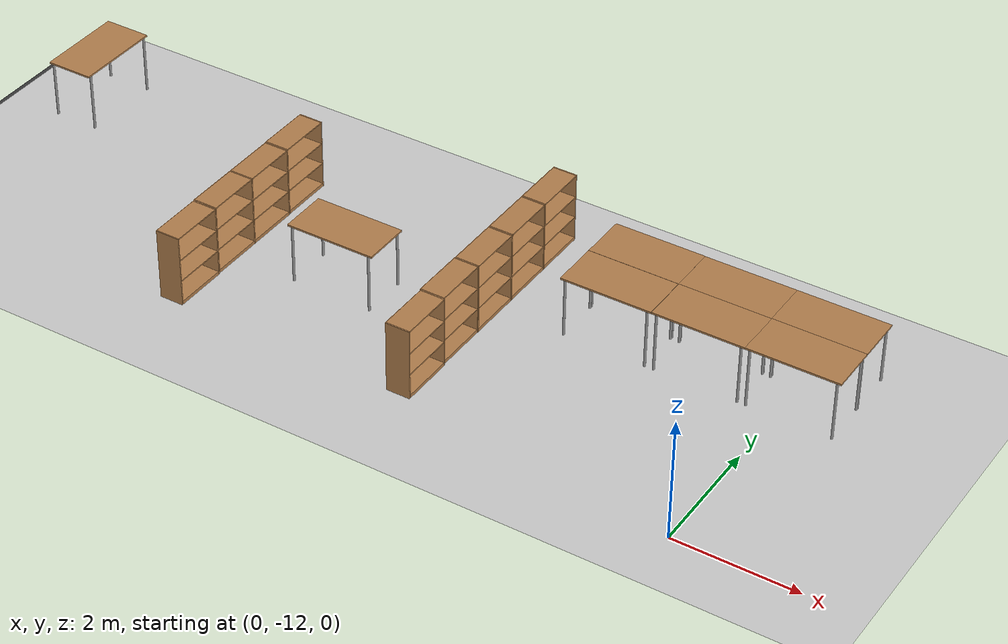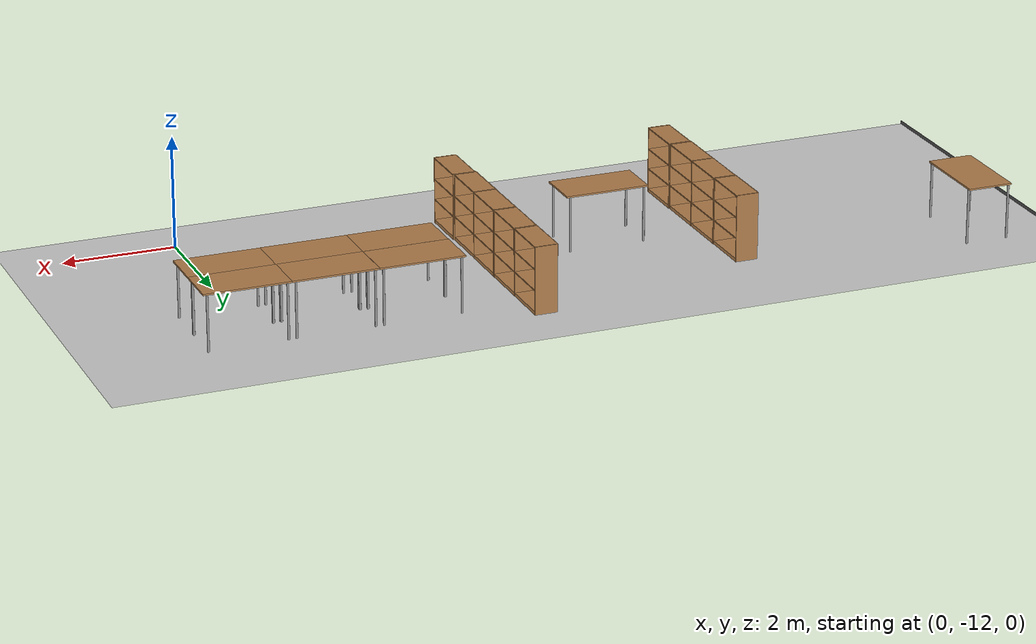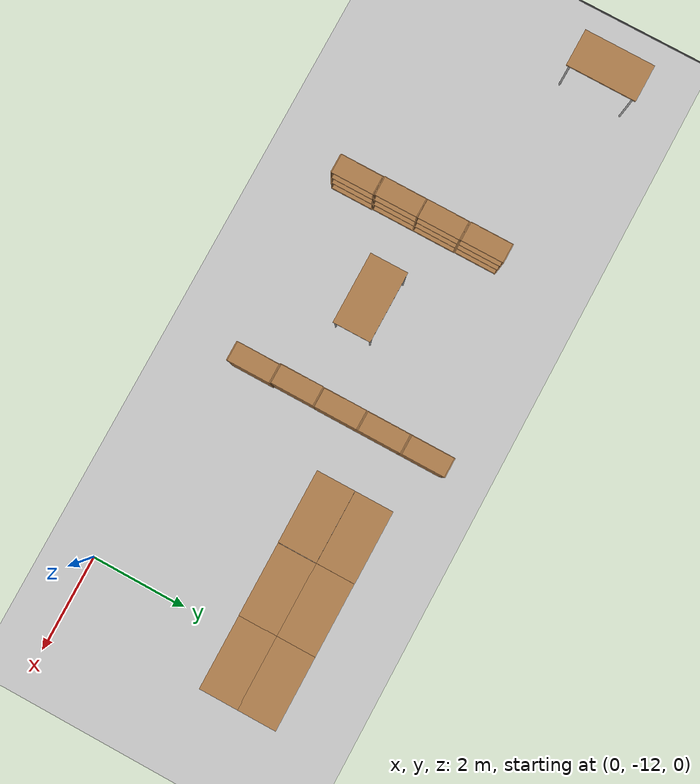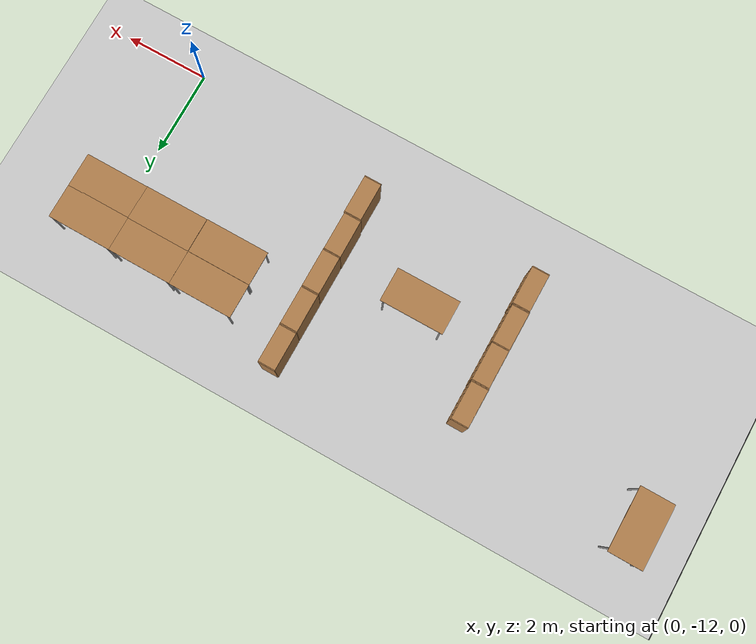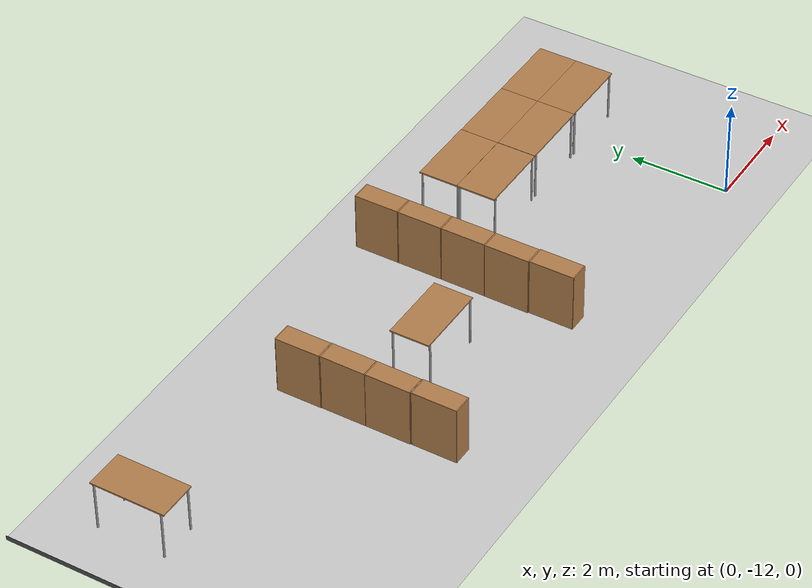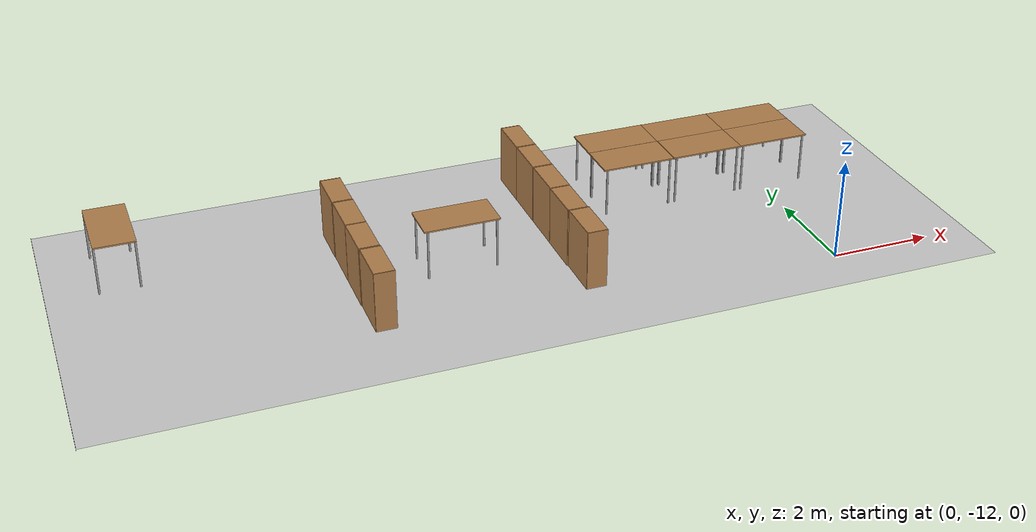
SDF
<sdf version="1.7">
 <world name="default">
  <model name="ground_plane">
   <static>1</static>
   <link name="link">
    <collision name="collision">
     <geometry><plane><normal>0 0 1</normal><size>100 100</size></plane></geometry>
     <surface>
      <contact><collide_bitmask>65535</collide_bitmask></contact>
      <friction><ode><mu>100</mu><mu2>50</mu2></ode></friction>
     </surface>
    </collision>
    <visual name="visual">
     <cast_shadows>0</cast_shadows>
     <geometry><plane><normal>0 0 1</normal><size>100 100</size></plane></geometry>
     <material>
      <script><uri>file://media/materials/scripts/gazebo.material</uri><name>Gazebo/Grey</name></script>
     </material>
    </visual>
   </link>
  </model>
  <model name="asphalt_plane">
   <static>1</static>
   <link name="link">
    <collision name="collision"><geometry><box><size>16.2909 36.5058 0.1</size></box></geometry></collision>
    <visual name="visual">
     <cast_shadows>0</cast_shadows>
     <geometry><box><size>16.2909 36.5058 0.1</size></box></geometry>
     <material>
      <script>
       <uri>model://asphalt_plane/materials/scripts</uri>
       <uri>model://asphalt_plane/materials/textures</uri>
       <name>vrc/asphalt</name>
      </script>
     </material>
    </visual>
   </link>
   <pose>-24.6928 -1.37234 0 0 -0 0</pose>
  </model>
  <model name="bookshelf_clone_9">
   <static>1</static>
   <link name="link">
    <inertial><mass>1</mass></inertial>
    <collision name="back">
     <pose>0 0.005 0.6 0 -0 0</pose>
     <geometry><box><size>0.9 0.01 1.2</size></box></geometry>
    </collision>
    <visual name="visual1">
     <pose>0 0.005 0.6 0 -0 0</pose>
     <geometry><box><size>0.9 0.01 1.2</size></box></geometry>
     <material>
      <script><uri>file://media/materials/scripts/gazebo.material</uri><name>Gazebo/Wood</name></script>
     </material>
    </visual>
    <collision name="left_side">
     <pose>0.45 -0.195 0.6 0 -0 0</pose>
     <geometry><box><size>0.02 0.4 1.2</size></box></geometry>
    </collision>
    <visual name="visual2">
     <pose>0.45 -0.195 0.6 0 -0 0</pose>
     <geometry><box><size>0.02 0.4 1.2</size></box></geometry>
     <material>
      <script><uri>file://media/materials/scripts/gazebo.material</uri><name>Gazebo/Wood</name></script>
     </material>
    </visual>
    <collision name="right_side">
     <pose>-0.45 -0.195 0.6 0 -0 0</pose>
     <geometry><box><size>0.02 0.4 1.2</size></box></geometry>
    </collision>
    <visual name="visual3">
     <pose>-0.45 -0.195 0.6 0 -0 0</pose>
     <geometry><box><size>0.02 0.4 1.2</size></box></geometry>
     <material>
      <script><uri>file://media/materials/scripts/gazebo.material</uri><name>Gazebo/Wood</name></script>
     </material>
    </visual>
    <collision name="bottom">
     <pose>0 -0.195 0.03 0 -0 0</pose>
     <geometry><box><size>0.88 0.4 0.06</size></box></geometry>
    </collision>
    <visual name="visual4">
     <pose>0 -0.195 0.03 0 -0 0</pose>
     <geometry><box><size>0.88 0.4 0.06</size></box></geometry>
     <material>
      <script><uri>file://media/materials/scripts/gazebo.material</uri><name>Gazebo/Wood</name></script>
     </material>
    </visual>
    <collision name="top">
     <pose>0 -0.195 1.19 0 -0 0</pose>
     <geometry><box><size>0.88 0.4 0.02</size></box></geometry>
    </collision>
    <visual name="visual5">
     <pose>0 -0.195 1.19 0 -0 0</pose>
     <geometry><box><size>0.88 0.4 0.02</size></box></geometry>
     <material>
      <script><uri>file://media/materials/scripts/gazebo.material</uri><name>Gazebo/Wood</name></script>
     </material>
    </visual>
    <collision name="low_shelf">
     <pose>0 -0.195 0.43 0 -0 0</pose>
     <geometry><box><size>0.88 0.4 0.02</size></box></geometry>
    </collision>
    <visual name="visual6">
     <pose>0 -0.195 0.43 0 -0 0</pose>
     <geometry><box><size>0.88 0.4 0.02</size></box></geometry>
     <material>
      <script><uri>file://media/materials/scripts/gazebo.material</uri><name>Gazebo/Wood</name></script>
     </material>
    </visual>
    <collision name="high_shelf">
     <pose>0 -0.195 0.8 0 -0 0</pose>
     <geometry><box><size>0.88 0.4 0.02</size></box></geometry>
    </collision>
    <visual name="visual7">
     <pose>0 -0.195 0.8 0 -0 0</pose>
     <geometry><box><size>0.88 0.4 0.02</size></box></geometry>
     <material>
      <script><uri>file://media/materials/scripts/gazebo.material</uri><name>Gazebo/Wood</name></script>
     </material>
    </visual>
   </link>
   <pose>-8.95778 -10.9832 0 0 -0 1.56963</pose>
  </model>
  <model name="bookshelf_clone_9_clone">
   <static>1</static>
   <link name="link">
    <inertial><mass>1</mass></inertial>
    <collision name="back">
     <pose>0 0.005 0.6 0 -0 0</pose>
     <geometry><box><size>0.9 0.01 1.2</size></box></geometry>
    </collision>
    <visual name="visual1">
     <pose>0 0.005 0.6 0 -0 0</pose>
     <geometry><box><size>0.9 0.01 1.2</size></box></geometry>
     <material>
      <script><uri>file://media/materials/scripts/gazebo.material</uri><name>Gazebo/Wood</name></script>
     </material>
    </visual>
    <collision name="left_side">
     <pose>0.45 -0.195 0.6 0 -0 0</pose>
     <geometry><box><size>0.02 0.4 1.2</size></box></geometry>
    </collision>
    <visual name="visual2">
     <pose>0.45 -0.195 0.6 0 -0 0</pose>
     <geometry><box><size>0.02 0.4 1.2</size></box></geometry>
     <material>
      <script><uri>file://media/materials/scripts/gazebo.material</uri><name>Gazebo/Wood</name></script>
     </material>
    </visual>
    <collision name="right_side">
     <pose>-0.45 -0.195 0.6 0 -0 0</pose>
     <geometry><box><size>0.02 0.4 1.2</size></box></geometry>
    </collision>
    <visual name="visual3">
     <pose>-0.45 -0.195 0.6 0 -0 0</pose>
     <geometry><box><size>0.02 0.4 1.2</size></box></geometry>
     <material>
      <script><uri>file://media/materials/scripts/gazebo.material</uri><name>Gazebo/Wood</name></script>
     </material>
    </visual>
    <collision name="bottom">
     <pose>0 -0.195 0.03 0 -0 0</pose>
     <geometry><box><size>0.88 0.4 0.06</size></box></geometry>
    </collision>
    <visual name="visual4">
     <pose>0 -0.195 0.03 0 -0 0</pose>
     <geometry><box><size>0.88 0.4 0.06</size></box></geometry>
     <material>
      <script><uri>file://media/materials/scripts/gazebo.material</uri><name>Gazebo/Wood</name></script>
     </material>
    </visual>
    <collision name="top">
     <pose>0 -0.195 1.19 0 -0 0</pose>
     <geometry><box><size>0.88 0.4 0.02</size></box></geometry>
    </collision>
    <visual name="visual5">
     <pose>0 -0.195 1.19 0 -0 0</pose>
     <geometry><box><size>0.88 0.4 0.02</size></box></geometry>
     <material>
      <script><uri>file://media/materials/scripts/gazebo.material</uri><name>Gazebo/Wood</name></script>
     </material>
    </visual>
    <collision name="low_shelf">
     <pose>0 -0.195 0.43 0 -0 0</pose>
     <geometry><box><size>0.88 0.4 0.02</size></box></geometry>
    </collision>
    <visual name="visual6">
     <pose>0 -0.195 0.43 0 -0 0</pose>
     <geometry><box><size>0.88 0.4 0.02</size></box></geometry>
     <material>
      <script><uri>file://media/materials/scripts/gazebo.material</uri><name>Gazebo/Wood</name></script>
     </material>
    </visual>
    <collision name="high_shelf">
     <pose>0 -0.195 0.8 0 -0 0</pose>
     <geometry><box><size>0.88 0.4 0.02</size></box></geometry>
    </collision>
    <visual name="visual7">
     <pose>0 -0.195 0.8 0 -0 0</pose>
     <geometry><box><size>0.88 0.4 0.02</size></box></geometry>
     <material>
      <script><uri>file://media/materials/scripts/gazebo.material</uri><name>Gazebo/Wood</name></script>
     </material>
    </visual>
   </link>
   <pose>-8.96815 -10.0588 0 0 -0 1.56963</pose>
  </model>
  <model name="bookshelf_clone_9_clone_0">
   <static>1</static>
   <link name="link">
    <inertial><mass>1</mass></inertial>
    <collision name="back">
     <pose>0 0.005 0.6 0 -0 0</pose>
     <geometry><box><size>0.9 0.01 1.2</size></box></geometry>
    </collision>
    <visual name="visual1">
     <pose>0 0.005 0.6 0 -0 0</pose>
     <geometry><box><size>0.9 0.01 1.2</size></box></geometry>
     <material>
      <script><uri>file://media/materials/scripts/gazebo.material</uri><name>Gazebo/Wood</name></script>
     </material>
    </visual>
    <collision name="left_side">
     <pose>0.45 -0.195 0.6 0 -0 0</pose>
     <geometry><box><size>0.02 0.4 1.2</size></box></geometry>
    </collision>
    <visual name="visual2">
     <pose>0.45 -0.195 0.6 0 -0 0</pose>
     <geometry><box><size>0.02 0.4 1.2</size></box></geometry>
     <material>
      <script><uri>file://media/materials/scripts/gazebo.material</uri><name>Gazebo/Wood</name></script>
     </material>
    </visual>
    <collision name="right_side">
     <pose>-0.45 -0.195 0.6 0 -0 0</pose>
     <geometry><box><size>0.02 0.4 1.2</size></box></geometry>
    </collision>
    <visual name="visual3">
     <pose>-0.45 -0.195 0.6 0 -0 0</pose>
     <geometry><box><size>0.02 0.4 1.2</size></box></geometry>
     <material>
      <script><uri>file://media/materials/scripts/gazebo.material</uri><name>Gazebo/Wood</name></script>
     </material>
    </visual>
    <collision name="bottom">
     <pose>0 -0.195 0.03 0 -0 0</pose>
     <geometry><box><size>0.88 0.4 0.06</size></box></geometry>
    </collision>
    <visual name="visual4">
     <pose>0 -0.195 0.03 0 -0 0</pose>
     <geometry><box><size>0.88 0.4 0.06</size></box></geometry>
     <material>
      <script><uri>file://media/materials/scripts/gazebo.material</uri><name>Gazebo/Wood</name></script>
     </material>
    </visual>
    <collision name="top">
     <pose>0 -0.195 1.19 0 -0 0</pose>
     <geometry><box><size>0.88 0.4 0.02</size></box></geometry>
    </collision>
    <visual name="visual5">
     <pose>0 -0.195 1.19 0 -0 0</pose>
     <geometry><box><size>0.88 0.4 0.02</size></box></geometry>
     <material>
      <script><uri>file://media/materials/scripts/gazebo.material</uri><name>Gazebo/Wood</name></script>
     </material>
    </visual>
    <collision name="low_shelf">
     <pose>0 -0.195 0.43 0 -0 0</pose>
     <geometry><box><size>0.88 0.4 0.02</size></box></geometry>
    </collision>
    <visual name="visual6">
     <pose>0 -0.195 0.43 0 -0 0</pose>
     <geometry><box><size>0.88 0.4 0.02</size></box></geometry>
     <material>
      <script><uri>file://media/materials/scripts/gazebo.material</uri><name>Gazebo/Wood</name></script>
     </material>
    </visual>
    <collision name="high_shelf">
     <pose>0 -0.195 0.8 0 -0 0</pose>
     <geometry><box><size>0.88 0.4 0.02</size></box></geometry>
    </collision>
    <visual name="visual7">
     <pose>0 -0.195 0.8 0 -0 0</pose>
     <geometry><box><size>0.88 0.4 0.02</size></box></geometry>
     <material>
      <script><uri>file://media/materials/scripts/gazebo.material</uri><name>Gazebo/Wood</name></script>
     </material>
    </visual>
   </link>
   <pose>-8.96815 -9.15068 0 0 -0 1.56963</pose>
  </model>
  <model name="bookshelf_clone_9_clone_1">
   <static>1</static>
   <link name="link">
    <inertial><mass>1</mass></inertial>
    <collision name="back">
     <pose>0 0.005 0.6 0 -0 0</pose>
     <geometry><box><size>0.9 0.01 1.2</size></box></geometry>
    </collision>
    <visual name="visual1">
     <pose>0 0.005 0.6 0 -0 0</pose>
     <geometry><box><size>0.9 0.01 1.2</size></box></geometry>
     <material>
      <script><uri>file://media/materials/scripts/gazebo.material</uri><name>Gazebo/Wood</name></script>
     </material>
    </visual>
    <collision name="left_side">
     <pose>0.45 -0.195 0.6 0 -0 0</pose>
     <geometry><box><size>0.02 0.4 1.2</size></box></geometry>
    </collision>
    <visual name="visual2">
     <pose>0.45 -0.195 0.6 0 -0 0</pose>
     <geometry><box><size>0.02 0.4 1.2</size></box></geometry>
     <material>
      <script><uri>file://media/materials/scripts/gazebo.material</uri><name>Gazebo/Wood</name></script>
     </material>
    </visual>
    <collision name="right_side">
     <pose>-0.45 -0.195 0.6 0 -0 0</pose>
     <geometry><box><size>0.02 0.4 1.2</size></box></geometry>
    </collision>
    <visual name="visual3">
     <pose>-0.45 -0.195 0.6 0 -0 0</pose>
     <geometry><box><size>0.02 0.4 1.2</size></box></geometry>
     <material>
      <script><uri>file://media/materials/scripts/gazebo.material</uri><name>Gazebo/Wood</name></script>
     </material>
    </visual>
    <collision name="bottom">
     <pose>0 -0.195 0.03 0 -0 0</pose>
     <geometry><box><size>0.88 0.4 0.06</size></box></geometry>
    </collision>
    <visual name="visual4">
     <pose>0 -0.195 0.03 0 -0 0</pose>
     <geometry><box><size>0.88 0.4 0.06</size></box></geometry>
     <material>
      <script><uri>file://media/materials/scripts/gazebo.material</uri><name>Gazebo/Wood</name></script>
     </material>
    </visual>
    <collision name="top">
     <pose>0 -0.195 1.19 0 -0 0</pose>
     <geometry><box><size>0.88 0.4 0.02</size></box></geometry>
    </collision>
    <visual name="visual5">
     <pose>0 -0.195 1.19 0 -0 0</pose>
     <geometry><box><size>0.88 0.4 0.02</size></box></geometry>
     <material>
      <script><uri>file://media/materials/scripts/gazebo.material</uri><name>Gazebo/Wood</name></script>
     </material>
    </visual>
    <collision name="low_shelf">
     <pose>0 -0.195 0.43 0 -0 0</pose>
     <geometry><box><size>0.88 0.4 0.02</size></box></geometry>
    </collision>
    <visual name="visual6">
     <pose>0 -0.195 0.43 0 -0 0</pose>
     <geometry><box><size>0.88 0.4 0.02</size></box></geometry>
     <material>
      <script><uri>file://media/materials/scripts/gazebo.material</uri><name>Gazebo/Wood</name></script>
     </material>
    </visual>
    <collision name="high_shelf">
     <pose>0 -0.195 0.8 0 -0 0</pose>
     <geometry><box><size>0.88 0.4 0.02</size></box></geometry>
    </collision>
    <visual name="visual7">
     <pose>0 -0.195 0.8 0 -0 0</pose>
     <geometry><box><size>0.88 0.4 0.02</size></box></geometry>
     <material>
      <script><uri>file://media/materials/scripts/gazebo.material</uri><name>Gazebo/Wood</name></script>
     </material>
    </visual>
   </link>
   <pose>-8.97455 -8.2298 0 0 -0 1.56963</pose>
  </model>
  <model name="bookshelf_clone_9_clone_3">
   <static>1</static>
   <link name="link">
    <inertial><mass>1</mass></inertial>
    <collision name="back">
     <pose>0 0.005 0.6 0 -0 0</pose>
     <geometry><box><size>0.9 0.01 1.2</size></box></geometry>
    </collision>
    <visual name="visual1">
     <pose>0 0.005 0.6 0 -0 0</pose>
     <geometry><box><size>0.9 0.01 1.2</size></box></geometry>
     <material>
      <script><uri>file://media/materials/scripts/gazebo.material</uri><name>Gazebo/Wood</name></script>
     </material>
    </visual>
    <collision name="left_side">
     <pose>0.45 -0.195 0.6 0 -0 0</pose>
     <geometry><box><size>0.02 0.4 1.2</size></box></geometry>
    </collision>
    <visual name="visual2">
     <pose>0.45 -0.195 0.6 0 -0 0</pose>
     <geometry><box><size>0.02 0.4 1.2</size></box></geometry>
     <material>
      <script><uri>file://media/materials/scripts/gazebo.material</uri><name>Gazebo/Wood</name></script>
     </material>
    </visual>
    <collision name="right_side">
     <pose>-0.45 -0.195 0.6 0 -0 0</pose>
     <geometry><box><size>0.02 0.4 1.2</size></box></geometry>
    </collision>
    <visual name="visual3">
     <pose>-0.45 -0.195 0.6 0 -0 0</pose>
     <geometry><box><size>0.02 0.4 1.2</size></box></geometry>
     <material>
      <script><uri>file://media/materials/scripts/gazebo.material</uri><name>Gazebo/Wood</name></script>
     </material>
    </visual>
    <collision name="bottom">
     <pose>0 -0.195 0.03 0 -0 0</pose>
     <geometry><box><size>0.88 0.4 0.06</size></box></geometry>
    </collision>
    <visual name="visual4">
     <pose>0 -0.195 0.03 0 -0 0</pose>
     <geometry><box><size>0.88 0.4 0.06</size></box></geometry>
     <material>
      <script><uri>file://media/materials/scripts/gazebo.material</uri><name>Gazebo/Wood</name></script>
     </material>
    </visual>
    <collision name="top">
     <pose>0 -0.195 1.19 0 -0 0</pose>
     <geometry><box><size>0.88 0.4 0.02</size></box></geometry>
    </collision>
    <visual name="visual5">
     <pose>0 -0.195 1.19 0 -0 0</pose>
     <geometry><box><size>0.88 0.4 0.02</size></box></geometry>
     <material>
      <script><uri>file://media/materials/scripts/gazebo.material</uri><name>Gazebo/Wood</name></script>
     </material>
    </visual>
    <collision name="low_shelf">
     <pose>0 -0.195 0.43 0 -0 0</pose>
     <geometry><box><size>0.88 0.4 0.02</size></box></geometry>
    </collision>
    <visual name="visual6">
     <pose>0 -0.195 0.43 0 -0 0</pose>
     <geometry><box><size>0.88 0.4 0.02</size></box></geometry>
     <material>
      <script><uri>file://media/materials/scripts/gazebo.material</uri><name>Gazebo/Wood</name></script>
     </material>
    </visual>
    <collision name="high_shelf">
     <pose>0 -0.195 0.8 0 -0 0</pose>
     <geometry><box><size>0.88 0.4 0.02</size></box></geometry>
    </collision>
    <visual name="visual7">
     <pose>0 -0.195 0.8 0 -0 0</pose>
     <geometry><box><size>0.88 0.4 0.02</size></box></geometry>
     <material>
      <script><uri>file://media/materials/scripts/gazebo.material</uri><name>Gazebo/Wood</name></script>
     </material>
    </visual>
   </link>
   <pose>-4.91877 -10.9849 0 0 -0 1.56963</pose>
  </model>
  <model name="bookshelf_clone_9_clone_4">
   <static>1</static>
   <link name="link">
    <inertial><mass>1</mass></inertial>
    <collision name="back">
     <pose>0 0.005 0.6 0 -0 0</pose>
     <geometry><box><size>0.9 0.01 1.2</size></box></geometry>
    </collision>
    <visual name="visual1">
     <pose>0 0.005 0.6 0 -0 0</pose>
     <geometry><box><size>0.9 0.01 1.2</size></box></geometry>
     <material>
      <script><uri>file://media/materials/scripts/gazebo.material</uri><name>Gazebo/Wood</name></script>
     </material>
    </visual>
    <collision name="left_side">
     <pose>0.45 -0.195 0.6 0 -0 0</pose>
     <geometry><box><size>0.02 0.4 1.2</size></box></geometry>
    </collision>
    <visual name="visual2">
     <pose>0.45 -0.195 0.6 0 -0 0</pose>
     <geometry><box><size>0.02 0.4 1.2</size></box></geometry>
     <material>
      <script><uri>file://media/materials/scripts/gazebo.material</uri><name>Gazebo/Wood</name></script>
     </material>
    </visual>
    <collision name="right_side">
     <pose>-0.45 -0.195 0.6 0 -0 0</pose>
     <geometry><box><size>0.02 0.4 1.2</size></box></geometry>
    </collision>
    <visual name="visual3">
     <pose>-0.45 -0.195 0.6 0 -0 0</pose>
     <geometry><box><size>0.02 0.4 1.2</size></box></geometry>
     <material>
      <script><uri>file://media/materials/scripts/gazebo.material</uri><name>Gazebo/Wood</name></script>
     </material>
    </visual>
    <collision name="bottom">
     <pose>0 -0.195 0.03 0 -0 0</pose>
     <geometry><box><size>0.88 0.4 0.06</size></box></geometry>
    </collision>
    <visual name="visual4">
     <pose>0 -0.195 0.03 0 -0 0</pose>
     <geometry><box><size>0.88 0.4 0.06</size></box></geometry>
     <material>
      <script><uri>file://media/materials/scripts/gazebo.material</uri><name>Gazebo/Wood</name></script>
     </material>
    </visual>
    <collision name="top">
     <pose>0 -0.195 1.19 0 -0 0</pose>
     <geometry><box><size>0.88 0.4 0.02</size></box></geometry>
    </collision>
    <visual name="visual5">
     <pose>0 -0.195 1.19 0 -0 0</pose>
     <geometry><box><size>0.88 0.4 0.02</size></box></geometry>
     <material>
      <script><uri>file://media/materials/scripts/gazebo.material</uri><name>Gazebo/Wood</name></script>
     </material>
    </visual>
    <collision name="low_shelf">
     <pose>0 -0.195 0.43 0 -0 0</pose>
     <geometry><box><size>0.88 0.4 0.02</size></box></geometry>
    </collision>
    <visual name="visual6">
     <pose>0 -0.195 0.43 0 -0 0</pose>
     <geometry><box><size>0.88 0.4 0.02</size></box></geometry>
     <material>
      <script><uri>file://media/materials/scripts/gazebo.material</uri><name>Gazebo/Wood</name></script>
     </material>
    </visual>
    <collision name="high_shelf">
     <pose>0 -0.195 0.8 0 -0 0</pose>
     <geometry><box><size>0.88 0.4 0.02</size></box></geometry>
    </collision>
    <visual name="visual7">
     <pose>0 -0.195 0.8 0 -0 0</pose>
     <geometry><box><size>0.88 0.4 0.02</size></box></geometry>
     <material>
      <script><uri>file://media/materials/scripts/gazebo.material</uri><name>Gazebo/Wood</name></script>
     </material>
    </visual>
   </link>
   <pose>-4.93739 -10.0691 0 0 -0 1.56963</pose>
  </model>
  <model name="bookshelf_clone_9_clone_5">
   <static>1</static>
   <link name="link">
    <inertial><mass>1</mass></inertial>
    <collision name="back">
     <pose>0 0.005 0.6 0 -0 0</pose>
     <geometry><box><size>0.9 0.01 1.2</size></box></geometry>
    </collision>
    <visual name="visual1">
     <pose>0 0.005 0.6 0 -0 0</pose>
     <geometry><box><size>0.9 0.01 1.2</size></box></geometry>
     <material>
      <script><uri>file://media/materials/scripts/gazebo.material</uri><name>Gazebo/Wood</name></script>
     </material>
    </visual>
    <collision name="left_side">
     <pose>0.45 -0.195 0.6 0 -0 0</pose>
     <geometry><box><size>0.02 0.4 1.2</size></box></geometry>
    </collision>
    <visual name="visual2">
     <pose>0.45 -0.195 0.6 0 -0 0</pose>
     <geometry><box><size>0.02 0.4 1.2</size></box></geometry>
     <material>
      <script><uri>file://media/materials/scripts/gazebo.material</uri><name>Gazebo/Wood</name></script>
     </material>
    </visual>
    <collision name="right_side">
     <pose>-0.45 -0.195 0.6 0 -0 0</pose>
     <geometry><box><size>0.02 0.4 1.2</size></box></geometry>
    </collision>
    <visual name="visual3">
     <pose>-0.45 -0.195 0.6 0 -0 0</pose>
     <geometry><box><size>0.02 0.4 1.2</size></box></geometry>
     <material>
      <script><uri>file://media/materials/scripts/gazebo.material</uri><name>Gazebo/Wood</name></script>
     </material>
    </visual>
    <collision name="bottom">
     <pose>0 -0.195 0.03 0 -0 0</pose>
     <geometry><box><size>0.88 0.4 0.06</size></box></geometry>
    </collision>
    <visual name="visual4">
     <pose>0 -0.195 0.03 0 -0 0</pose>
     <geometry><box><size>0.88 0.4 0.06</size></box></geometry>
     <material>
      <script><uri>file://media/materials/scripts/gazebo.material</uri><name>Gazebo/Wood</name></script>
     </material>
    </visual>
    <collision name="top">
     <pose>0 -0.195 1.19 0 -0 0</pose>
     <geometry><box><size>0.88 0.4 0.02</size></box></geometry>
    </collision>
    <visual name="visual5">
     <pose>0 -0.195 1.19 0 -0 0</pose>
     <geometry><box><size>0.88 0.4 0.02</size></box></geometry>
     <material>
      <script><uri>file://media/materials/scripts/gazebo.material</uri><name>Gazebo/Wood</name></script>
     </material>
    </visual>
    <collision name="low_shelf">
     <pose>0 -0.195 0.43 0 -0 0</pose>
     <geometry><box><size>0.88 0.4 0.02</size></box></geometry>
    </collision>
    <visual name="visual6">
     <pose>0 -0.195 0.43 0 -0 0</pose>
     <geometry><box><size>0.88 0.4 0.02</size></box></geometry>
     <material>
      <script><uri>file://media/materials/scripts/gazebo.material</uri><name>Gazebo/Wood</name></script>
     </material>
    </visual>
    <collision name="high_shelf">
     <pose>0 -0.195 0.8 0 -0 0</pose>
     <geometry><box><size>0.88 0.4 0.02</size></box></geometry>
    </collision>
    <visual name="visual7">
     <pose>0 -0.195 0.8 0 -0 0</pose>
     <geometry><box><size>0.88 0.4 0.02</size></box></geometry>
     <material>
      <script><uri>file://media/materials/scripts/gazebo.material</uri><name>Gazebo/Wood</name></script>
     </material>
    </visual>
   </link>
   <pose>-4.93278 -9.15554 0 0 -0 1.56963</pose>
  </model>
  <model name="bookshelf_clone_9_clone_6">
   <static>1</static>
   <link name="link">
    <inertial><mass>1</mass></inertial>
    <collision name="back">
     <pose>0 0.005 0.6 0 -0 0</pose>
     <geometry><box><size>0.9 0.01 1.2</size></box></geometry>
    </collision>
    <visual name="visual1">
     <pose>0 0.005 0.6 0 -0 0</pose>
     <geometry><box><size>0.9 0.01 1.2</size></box></geometry>
     <material>
      <script><uri>file://media/materials/scripts/gazebo.material</uri><name>Gazebo/Wood</name></script>
     </material>
    </visual>
    <collision name="left_side">
     <pose>0.45 -0.195 0.6 0 -0 0</pose>
     <geometry><box><size>0.02 0.4 1.2</size></box></geometry>
    </collision>
    <visual name="visual2">
     <pose>0.45 -0.195 0.6 0 -0 0</pose>
     <geometry><box><size>0.02 0.4 1.2</size></box></geometry>
     <material>
      <script><uri>file://media/materials/scripts/gazebo.material</uri><name>Gazebo/Wood</name></script>
     </material>
    </visual>
    <collision name="right_side">
     <pose>-0.45 -0.195 0.6 0 -0 0</pose>
     <geometry><box><size>0.02 0.4 1.2</size></box></geometry>
    </collision>
    <visual name="visual3">
     <pose>-0.45 -0.195 0.6 0 -0 0</pose>
     <geometry><box><size>0.02 0.4 1.2</size></box></geometry>
     <material>
      <script><uri>file://media/materials/scripts/gazebo.material</uri><name>Gazebo/Wood</name></script>
     </material>
    </visual>
    <collision name="bottom">
     <pose>0 -0.195 0.03 0 -0 0</pose>
     <geometry><box><size>0.88 0.4 0.06</size></box></geometry>
    </collision>
    <visual name="visual4">
     <pose>0 -0.195 0.03 0 -0 0</pose>
     <geometry><box><size>0.88 0.4 0.06</size></box></geometry>
     <material>
      <script><uri>file://media/materials/scripts/gazebo.material</uri><name>Gazebo/Wood</name></script>
     </material>
    </visual>
    <collision name="top">
     <pose>0 -0.195 1.19 0 -0 0</pose>
     <geometry><box><size>0.88 0.4 0.02</size></box></geometry>
    </collision>
    <visual name="visual5">
     <pose>0 -0.195 1.19 0 -0 0</pose>
     <geometry><box><size>0.88 0.4 0.02</size></box></geometry>
     <material>
      <script><uri>file://media/materials/scripts/gazebo.material</uri><name>Gazebo/Wood</name></script>
     </material>
    </visual>
    <collision name="low_shelf">
     <pose>0 -0.195 0.43 0 -0 0</pose>
     <geometry><box><size>0.88 0.4 0.02</size></box></geometry>
    </collision>
    <visual name="visual6">
     <pose>0 -0.195 0.43 0 -0 0</pose>
     <geometry><box><size>0.88 0.4 0.02</size></box></geometry>
     <material>
      <script><uri>file://media/materials/scripts/gazebo.material</uri><name>Gazebo/Wood</name></script>
     </material>
    </visual>
    <collision name="high_shelf">
     <pose>0 -0.195 0.8 0 -0 0</pose>
     <geometry><box><size>0.88 0.4 0.02</size></box></geometry>
    </collision>
    <visual name="visual7">
     <pose>0 -0.195 0.8 0 -0 0</pose>
     <geometry><box><size>0.88 0.4 0.02</size></box></geometry>
     <material>
      <script><uri>file://media/materials/scripts/gazebo.material</uri><name>Gazebo/Wood</name></script>
     </material>
    </visual>
   </link>
   <pose>-4.93278 -8.2374 0 0 -0 1.56963</pose>
  </model>
  <model name="bookshelf_clone_9_clone_7">
   <static>1</static>
   <link name="link">
    <inertial><mass>1</mass></inertial>
    <collision name="back">
     <pose>0 0.005 0.6 0 -0 0</pose>
     <geometry><box><size>0.9 0.01 1.2</size></box></geometry>
    </collision>
    <visual name="visual1">
     <pose>0 0.005 0.6 0 -0 0</pose>
     <geometry><box><size>0.9 0.01 1.2</size></box></geometry>
     <material>
      <script><uri>file://media/materials/scripts/gazebo.material</uri><name>Gazebo/Wood</name></script>
     </material>
    </visual>
    <collision name="left_side">
     <pose>0.45 -0.195 0.6 0 -0 0</pose>
     <geometry><box><size>0.02 0.4 1.2</size></box></geometry>
    </collision>
    <visual name="visual2">
     <pose>0.45 -0.195 0.6 0 -0 0</pose>
     <geometry><box><size>0.02 0.4 1.2</size></box></geometry>
     <material>
      <script><uri>file://media/materials/scripts/gazebo.material</uri><name>Gazebo/Wood</name></script>
     </material>
    </visual>
    <collision name="right_side">
     <pose>-0.45 -0.195 0.6 0 -0 0</pose>
     <geometry><box><size>0.02 0.4 1.2</size></box></geometry>
    </collision>
    <visual name="visual3">
     <pose>-0.45 -0.195 0.6 0 -0 0</pose>
     <geometry><box><size>0.02 0.4 1.2</size></box></geometry>
     <material>
      <script><uri>file://media/materials/scripts/gazebo.material</uri><name>Gazebo/Wood</name></script>
     </material>
    </visual>
    <collision name="bottom">
     <pose>0 -0.195 0.03 0 -0 0</pose>
     <geometry><box><size>0.88 0.4 0.06</size></box></geometry>
    </collision>
    <visual name="visual4">
     <pose>0 -0.195 0.03 0 -0 0</pose>
     <geometry><box><size>0.88 0.4 0.06</size></box></geometry>
     <material>
      <script><uri>file://media/materials/scripts/gazebo.material</uri><name>Gazebo/Wood</name></script>
     </material>
    </visual>
    <collision name="top">
     <pose>0 -0.195 1.19 0 -0 0</pose>
     <geometry><box><size>0.88 0.4 0.02</size></box></geometry>
    </collision>
    <visual name="visual5">
     <pose>0 -0.195 1.19 0 -0 0</pose>
     <geometry><box><size>0.88 0.4 0.02</size></box></geometry>
     <material>
      <script><uri>file://media/materials/scripts/gazebo.material</uri><name>Gazebo/Wood</name></script>
     </material>
    </visual>
    <collision name="low_shelf">
     <pose>0 -0.195 0.43 0 -0 0</pose>
     <geometry><box><size>0.88 0.4 0.02</size></box></geometry>
    </collision>
    <visual name="visual6">
     <pose>0 -0.195 0.43 0 -0 0</pose>
     <geometry><box><size>0.88 0.4 0.02</size></box></geometry>
     <material>
      <script><uri>file://media/materials/scripts/gazebo.material</uri><name>Gazebo/Wood</name></script>
     </material>
    </visual>
    <collision name="high_shelf">
     <pose>0 -0.195 0.8 0 -0 0</pose>
     <geometry><box><size>0.88 0.4 0.02</size></box></geometry>
    </collision>
    <visual name="visual7">
     <pose>0 -0.195 0.8 0 -0 0</pose>
     <geometry><box><size>0.88 0.4 0.02</size></box></geometry>
     <material>
      <script><uri>file://media/materials/scripts/gazebo.material</uri><name>Gazebo/Wood</name></script>
     </material>
    </visual>
   </link>
   <pose>-4.93278 -7.31926 0 0 -0 1.56963</pose>
  </model>
  <model name="table">
   <static>1</static>
   <link name="link">
    <collision name="surface">
     <pose>0 0 1 0 -0 0</pose>
     <geometry><box><size>1.5 0.8 0.03</size></box></geometry>
     <surface><friction><ode><mu>0.6</mu><mu2>0.6</mu2></ode></friction></surface>
    </collision>
    <visual name="visual1">
     <pose>0 0 1 0 -0 0</pose>
     <geometry><box><size>1.5 0.8 0.03</size></box></geometry>
     <material>
      <script><uri>file://media/materials/scripts/gazebo.material</uri><name>Gazebo/Wood</name></script>
     </material>
    </visual>
    <collision name="front_left_leg">
     <pose>0.68 0.38 0.5 0 -0 0</pose>
     <geometry><cylinder><radius>0.02</radius><length>1</length></cylinder></geometry>
    </collision>
    <visual name="front_left_leg">
     <pose>0.68 0.38 0.5 0 -0 0</pose>
     <geometry><cylinder><radius>0.02</radius><length>1</length></cylinder></geometry>
     <material>
      <script><uri>file://media/materials/scripts/gazebo.material</uri><name>Gazebo/Grey</name></script>
     </material>
    </visual>
    <collision name="front_right_leg">
     <pose>0.68 -0.38 0.5 0 -0 0</pose>
     <geometry><cylinder><radius>0.02</radius><length>1</length></cylinder></geometry>
    </collision>
    <visual name="front_right_leg">
     <pose>0.68 -0.38 0.5 0 -0 0</pose>
     <geometry><cylinder><radius>0.02</radius><length>1</length></cylinder></geometry>
     <material>
      <script><uri>file://media/materials/scripts/gazebo.material</uri><name>Gazebo/Grey</name></script>
     </material>
    </visual>
    <collision name="back_right_leg">
     <pose>-0.68 -0.38 0.5 0 -0 0</pose>
     <geometry><cylinder><radius>0.02</radius><length>1</length></cylinder></geometry>
    </collision>
    <visual name="back_right_leg">
     <pose>-0.68 -0.38 0.5 0 -0 0</pose>
     <geometry><cylinder><radius>0.02</radius><length>1</length></cylinder></geometry>
     <material>
      <script><uri>file://media/materials/scripts/gazebo.material</uri><name>Gazebo/Grey</name></script>
     </material>
    </visual>
    <collision name="back_left_leg">
     <pose>-0.68 0.38 0.5 0 -0 0</pose>
     <geometry><cylinder><radius>0.02</radius><length>1</length></cylinder></geometry>
    </collision>
    <visual name="back_left_leg">
     <pose>-0.68 0.38 0.5 0 -0 0</pose>
     <geometry><cylinder><radius>0.02</radius><length>1</length></cylinder></geometry>
     <material>
      <script><uri>file://media/materials/scripts/gazebo.material</uri><name>Gazebo/Grey</name></script>
     </material>
    </visual>
   </link>
   <pose>-6.8515 -9.65952 0 0 -0 0</pose>
  </model>
  <model name="table_clone_0">
   <static>1</static>
   <link name="link">
    <collision name="surface">
     <pose>0 0 1 0 -0 0</pose>
     <geometry><box><size>1.5 0.8 0.03</size></box></geometry>
     <surface><friction><ode><mu>0.6</mu><mu2>0.6</mu2></ode></friction></surface>
    </collision>
    <visual name="visual1">
     <pose>0 0 1 0 -0 0</pose>
     <geometry><box><size>1.5 0.8 0.03</size></box></geometry>
     <material>
      <script><uri>file://media/materials/scripts/gazebo.material</uri><name>Gazebo/Wood</name></script>
     </material>
    </visual>
    <collision name="front_left_leg">
     <pose>0.68 0.38 0.5 0 -0 0</pose>
     <geometry><cylinder><radius>0.02</radius><length>1</length></cylinder></geometry>
    </collision>
    <visual name="front_left_leg">
     <pose>0.68 0.38 0.5 0 -0 0</pose>
     <geometry><cylinder><radius>0.02</radius><length>1</length></cylinder></geometry>
     <material>
      <script><uri>file://media/materials/scripts/gazebo.material</uri><name>Gazebo/Grey</name></script>
     </material>
    </visual>
    <collision name="front_right_leg">
     <pose>0.68 -0.38 0.5 0 -0 0</pose>
     <geometry><cylinder><radius>0.02</radius><length>1</length></cylinder></geometry>
    </collision>
    <visual name="front_right_leg">
     <pose>0.68 -0.38 0.5 0 -0 0</pose>
     <geometry><cylinder><radius>0.02</radius><length>1</length></cylinder></geometry>
     <material>
      <script><uri>file://media/materials/scripts/gazebo.material</uri><name>Gazebo/Grey</name></script>
     </material>
    </visual>
    <collision name="back_right_leg">
     <pose>-0.68 -0.38 0.5 0 -0 0</pose>
     <geometry><cylinder><radius>0.02</radius><length>1</length></cylinder></geometry>
    </collision>
    <visual name="back_right_leg">
     <pose>-0.68 -0.38 0.5 0 -0 0</pose>
     <geometry><cylinder><radius>0.02</radius><length>1</length></cylinder></geometry>
     <material>
      <script><uri>file://media/materials/scripts/gazebo.material</uri><name>Gazebo/Grey</name></script>
     </material>
    </visual>
    <collision name="back_left_leg">
     <pose>-0.68 0.38 0.5 0 -0 0</pose>
     <geometry><cylinder><radius>0.02</radius><length>1</length></cylinder></geometry>
    </collision>
    <visual name="back_left_leg">
     <pose>-0.68 0.38 0.5 0 -0 0</pose>
     <geometry><cylinder><radius>0.02</radius><length>1</length></cylinder></geometry>
     <material>
      <script><uri>file://media/materials/scripts/gazebo.material</uri><name>Gazebo/Grey</name></script>
     </material>
    </visual>
   </link>
   <pose>-12.9953 -7.75092 0 0 0 -1.57488</pose>
  </model>
  <model name="table_clone_1_clone">
   <static>1</static>
   <link name="link">
    <collision name="surface">
     <pose>0 0 1 0 -0 0</pose>
     <geometry><box><size>1.5 0.8 0.03</size></box></geometry>
     <surface><friction><ode><mu>0.6</mu><mu2>0.6</mu2></ode></friction></surface>
    </collision>
    <visual name="visual1">
     <pose>0 0 1 0 -0 0</pose>
     <geometry><box><size>1.5 0.8 0.03</size></box></geometry>
     <material>
      <script><uri>file://media/materials/scripts/gazebo.material</uri><name>Gazebo/Wood</name></script>
     </material>
    </visual>
    <collision name="front_left_leg">
     <pose>0.68 0.38 0.5 0 -0 0</pose>
     <geometry><cylinder><radius>0.02</radius><length>1</length></cylinder></geometry>
    </collision>
    <visual name="front_left_leg">
     <pose>0.68 0.38 0.5 0 -0 0</pose>
     <geometry><cylinder><radius>0.02</radius><length>1</length></cylinder></geometry>
     <material>
      <script><uri>file://media/materials/scripts/gazebo.material</uri><name>Gazebo/Grey</name></script>
     </material>
    </visual>
    <collision name="front_right_leg">
     <pose>0.68 -0.38 0.5 0 -0 0</pose>
     <geometry><cylinder><radius>0.02</radius><length>1</length></cylinder></geometry>
    </collision>
    <visual name="front_right_leg">
     <pose>0.68 -0.38 0.5 0 -0 0</pose>
     <geometry><cylinder><radius>0.02</radius><length>1</length></cylinder></geometry>
     <material>
      <script><uri>file://media/materials/scripts/gazebo.material</uri><name>Gazebo/Grey</name></script>
     </material>
    </visual>
    <collision name="back_right_leg">
     <pose>-0.68 -0.38 0.5 0 -0 0</pose>
     <geometry><cylinder><radius>0.02</radius><length>1</length></cylinder></geometry>
    </collision>
    <visual name="back_right_leg">
     <pose>-0.68 -0.38 0.5 0 -0 0</pose>
     <geometry><cylinder><radius>0.02</radius><length>1</length></cylinder></geometry>
     <material>
      <script><uri>file://media/materials/scripts/gazebo.material</uri><name>Gazebo/Grey</name></script>
     </material>
    </visual>
    <collision name="back_left_leg">
     <pose>-0.68 0.38 0.5 0 -0 0</pose>
     <geometry><cylinder><radius>0.02</radius><length>1</length></cylinder></geometry>
    </collision>
    <visual name="back_left_leg">
     <pose>-0.68 0.38 0.5 0 -0 0</pose>
     <geometry><cylinder><radius>0.02</radius><length>1</length></cylinder></geometry>
     <material>
      <script><uri>file://media/materials/scripts/gazebo.material</uri><name>Gazebo/Grey</name></script>
     </material>
    </visual>
   </link>
   <pose>0.214974 -8.58442 0 0 -0 0</pose>
  </model>
  <model name="table_clone_1_clone_0">
   <static>1</static>
   <link name="link">
    <collision name="surface">
     <pose>0 0 1 0 -0 0</pose>
     <geometry><box><size>1.5 0.8 0.03</size></box></geometry>
     <surface><friction><ode><mu>0.6</mu><mu2>0.6</mu2></ode></friction></surface>
    </collision>
    <visual name="visual1">
     <pose>0 0 1 0 -0 0</pose>
     <geometry><box><size>1.5 0.8 0.03</size></box></geometry>
     <material>
      <script><uri>file://media/materials/scripts/gazebo.material</uri><name>Gazebo/Wood</name></script>
     </material>
    </visual>
    <collision name="front_left_leg">
     <pose>0.68 0.38 0.5 0 -0 0</pose>
     <geometry><cylinder><radius>0.02</radius><length>1</length></cylinder></geometry>
    </collision>
    <visual name="front_left_leg">
     <pose>0.68 0.38 0.5 0 -0 0</pose>
     <geometry><cylinder><radius>0.02</radius><length>1</length></cylinder></geometry>
     <material>
      <script><uri>file://media/materials/scripts/gazebo.material</uri><name>Gazebo/Grey</name></script>
     </material>
    </visual>
    <collision name="front_right_leg">
     <pose>0.68 -0.38 0.5 0 -0 0</pose>
     <geometry><cylinder><radius>0.02</radius><length>1</length></cylinder></geometry>
    </collision>
    <visual name="front_right_leg">
     <pose>0.68 -0.38 0.5 0 -0 0</pose>
     <geometry><cylinder><radius>0.02</radius><length>1</length></cylinder></geometry>
     <material>
      <script><uri>file://media/materials/scripts/gazebo.material</uri><name>Gazebo/Grey</name></script>
     </material>
    </visual>
    <collision name="back_right_leg">
     <pose>-0.68 -0.38 0.5 0 -0 0</pose>
     <geometry><cylinder><radius>0.02</radius><length>1</length></cylinder></geometry>
    </collision>
    <visual name="back_right_leg">
     <pose>-0.68 -0.38 0.5 0 -0 0</pose>
     <geometry><cylinder><radius>0.02</radius><length>1</length></cylinder></geometry>
     <material>
      <script><uri>file://media/materials/scripts/gazebo.material</uri><name>Gazebo/Grey</name></script>
     </material>
    </visual>
    <collision name="back_left_leg">
     <pose>-0.68 0.38 0.5 0 -0 0</pose>
     <geometry><cylinder><radius>0.02</radius><length>1</length></cylinder></geometry>
    </collision>
    <visual name="back_left_leg">
     <pose>-0.68 0.38 0.5 0 -0 0</pose>
     <geometry><cylinder><radius>0.02</radius><length>1</length></cylinder></geometry>
     <material>
      <script><uri>file://media/materials/scripts/gazebo.material</uri><name>Gazebo/Grey</name></script>
     </material>
    </visual>
   </link>
   <pose>0.214974 -7.79545 0 0 -0 0</pose>
  </model>
  <model name="table_clone_1_clone_0_clone">
   <static>1</static>
   <link name="link">
    <collision name="surface">
     <pose>0 0 1 0 -0 0</pose>
     <geometry><box><size>1.5 0.8 0.03</size></box></geometry>
     <surface><friction><ode><mu>0.6</mu><mu2>0.6</mu2></ode></friction></surface>
    </collision>
    <visual name="visual1">
     <pose>0 0 1 0 -0 0</pose>
     <geometry><box><size>1.5 0.8 0.03</size></box></geometry>
     <material>
      <script><uri>file://media/materials/scripts/gazebo.material</uri><name>Gazebo/Wood</name></script>
     </material>
    </visual>
    <collision name="front_left_leg">
     <pose>0.68 0.38 0.5 0 -0 0</pose>
     <geometry><cylinder><radius>0.02</radius><length>1</length></cylinder></geometry>
    </collision>
    <visual name="front_left_leg">
     <pose>0.68 0.38 0.5 0 -0 0</pose>
     <geometry><cylinder><radius>0.02</radius><length>1</length></cylinder></geometry>
     <material>
      <script><uri>file://media/materials/scripts/gazebo.material</uri><name>Gazebo/Grey</name></script>
     </material>
    </visual>
    <collision name="front_right_leg">
     <pose>0.68 -0.38 0.5 0 -0 0</pose>
     <geometry><cylinder><radius>0.02</radius><length>1</length></cylinder></geometry>
    </collision>
    <visual name="front_right_leg">
     <pose>0.68 -0.38 0.5 0 -0 0</pose>
     <geometry><cylinder><radius>0.02</radius><length>1</length></cylinder></geometry>
     <material>
      <script><uri>file://media/materials/scripts/gazebo.material</uri><name>Gazebo/Grey</name></script>
     </material>
    </visual>
    <collision name="back_right_leg">
     <pose>-0.68 -0.38 0.5 0 -0 0</pose>
     <geometry><cylinder><radius>0.02</radius><length>1</length></cylinder></geometry>
    </collision>
    <visual name="back_right_leg">
     <pose>-0.68 -0.38 0.5 0 -0 0</pose>
     <geometry><cylinder><radius>0.02</radius><length>1</length></cylinder></geometry>
     <material>
      <script><uri>file://media/materials/scripts/gazebo.material</uri><name>Gazebo/Grey</name></script>
     </material>
    </visual>
    <collision name="back_left_leg">
     <pose>-0.68 0.38 0.5 0 -0 0</pose>
     <geometry><cylinder><radius>0.02</radius><length>1</length></cylinder></geometry>
    </collision>
    <visual name="back_left_leg">
     <pose>-0.68 0.38 0.5 0 -0 0</pose>
     <geometry><cylinder><radius>0.02</radius><length>1</length></cylinder></geometry>
     <material>
      <script><uri>file://media/materials/scripts/gazebo.material</uri><name>Gazebo/Grey</name></script>
     </material>
    </visual>
   </link>
   <pose>-1.28488 -7.79546 0 0 -0 0</pose>
  </model>
  <model name="table_clone_1_clone_0_clone_0">
   <static>1</static>
   <link name="link">
    <collision name="surface">
     <pose>0 0 1 0 -0 0</pose>
     <geometry><box><size>1.5 0.8 0.03</size></box></geometry>
     <surface><friction><ode><mu>0.6</mu><mu2>0.6</mu2></ode></friction></surface>
    </collision>
    <visual name="visual1">
     <pose>0 0 1 0 -0 0</pose>
     <geometry><box><size>1.5 0.8 0.03</size></box></geometry>
     <material>
      <script><uri>file://media/materials/scripts/gazebo.material</uri><name>Gazebo/Wood</name></script>
     </material>
    </visual>
    <collision name="front_left_leg">
     <pose>0.68 0.38 0.5 0 -0 0</pose>
     <geometry><cylinder><radius>0.02</radius><length>1</length></cylinder></geometry>
    </collision>
    <visual name="front_left_leg">
     <pose>0.68 0.38 0.5 0 -0 0</pose>
     <geometry><cylinder><radius>0.02</radius><length>1</length></cylinder></geometry>
     <material>
      <script><uri>file://media/materials/scripts/gazebo.material</uri><name>Gazebo/Grey</name></script>
     </material>
    </visual>
    <collision name="front_right_leg">
     <pose>0.68 -0.38 0.5 0 -0 0</pose>
     <geometry><cylinder><radius>0.02</radius><length>1</length></cylinder></geometry>
    </collision>
    <visual name="front_right_leg">
     <pose>0.68 -0.38 0.5 0 -0 0</pose>
     <geometry><cylinder><radius>0.02</radius><length>1</length></cylinder></geometry>
     <material>
      <script><uri>file://media/materials/scripts/gazebo.material</uri><name>Gazebo/Grey</name></script>
     </material>
    </visual>
    <collision name="back_right_leg">
     <pose>-0.68 -0.38 0.5 0 -0 0</pose>
     <geometry><cylinder><radius>0.02</radius><length>1</length></cylinder></geometry>
    </collision>
    <visual name="back_right_leg">
     <pose>-0.68 -0.38 0.5 0 -0 0</pose>
     <geometry><cylinder><radius>0.02</radius><length>1</length></cylinder></geometry>
     <material>
      <script><uri>file://media/materials/scripts/gazebo.material</uri><name>Gazebo/Grey</name></script>
     </material>
    </visual>
    <collision name="back_left_leg">
     <pose>-0.68 0.38 0.5 0 -0 0</pose>
     <geometry><cylinder><radius>0.02</radius><length>1</length></cylinder></geometry>
    </collision>
    <visual name="back_left_leg">
     <pose>-0.68 0.38 0.5 0 -0 0</pose>
     <geometry><cylinder><radius>0.02</radius><length>1</length></cylinder></geometry>
     <material>
      <script><uri>file://media/materials/scripts/gazebo.material</uri><name>Gazebo/Grey</name></script>
     </material>
    </visual>
   </link>
   <pose>-1.27819 -8.58827 0 0 -0 0</pose>
  </model>
  <model name="table_clone_1_clone_0_clone_1">
   <static>1</static>
   <link name="link">
    <collision name="surface">
     <pose>0 0 1 0 -0 0</pose>
     <geometry><box><size>1.5 0.8 0.03</size></box></geometry>
     <surface><friction><ode><mu>0.6</mu><mu2>0.6</mu2></ode></friction></surface>
    </collision>
    <visual name="visual1">
     <pose>0 0 1 0 -0 0</pose>
     <geometry><box><size>1.5 0.8 0.03</size></box></geometry>
     <material>
      <script><uri>file://media/materials/scripts/gazebo.material</uri><name>Gazebo/Wood</name></script>
     </material>
    </visual>
    <collision name="front_left_leg">
     <pose>0.68 0.38 0.5 0 -0 0</pose>
     <geometry><cylinder><radius>0.02</radius><length>1</length></cylinder></geometry>
    </collision>
    <visual name="front_left_leg">
     <pose>0.68 0.38 0.5 0 -0 0</pose>
     <geometry><cylinder><radius>0.02</radius><length>1</length></cylinder></geometry>
     <material>
      <script><uri>file://media/materials/scripts/gazebo.material</uri><name>Gazebo/Grey</name></script>
     </material>
    </visual>
    <collision name="front_right_leg">
     <pose>0.68 -0.38 0.5 0 -0 0</pose>
     <geometry><cylinder><radius>0.02</radius><length>1</length></cylinder></geometry>
    </collision>
    <visual name="front_right_leg">
     <pose>0.68 -0.38 0.5 0 -0 0</pose>
     <geometry><cylinder><radius>0.02</radius><length>1</length></cylinder></geometry>
     <material>
      <script><uri>file://media/materials/scripts/gazebo.material</uri><name>Gazebo/Grey</name></script>
     </material>
    </visual>
    <collision name="back_right_leg">
     <pose>-0.68 -0.38 0.5 0 -0 0</pose>
     <geometry><cylinder><radius>0.02</radius><length>1</length></cylinder></geometry>
    </collision>
    <visual name="back_right_leg">
     <pose>-0.68 -0.38 0.5 0 -0 0</pose>
     <geometry><cylinder><radius>0.02</radius><length>1</length></cylinder></geometry>
     <material>
      <script><uri>file://media/materials/scripts/gazebo.material</uri><name>Gazebo/Grey</name></script>
     </material>
    </visual>
    <collision name="back_left_leg">
     <pose>-0.68 0.38 0.5 0 -0 0</pose>
     <geometry><cylinder><radius>0.02</radius><length>1</length></cylinder></geometry>
    </collision>
    <visual name="back_left_leg">
     <pose>-0.68 0.38 0.5 0 -0 0</pose>
     <geometry><cylinder><radius>0.02</radius><length>1</length></cylinder></geometry>
     <material>
      <script><uri>file://media/materials/scripts/gazebo.material</uri><name>Gazebo/Grey</name></script>
     </material>
    </visual>
   </link>
   <pose>-2.78532 -8.59273 0 0 -0 0</pose>
  </model>
  <model name="table_clone_1_clone_0_clone_2">
   <static>1</static>
   <link name="link">
    <collision name="surface">
     <pose>0 0 1 0 -0 0</pose>
     <geometry><box><size>1.5 0.8 0.03</size></box></geometry>
     <surface><friction><ode><mu>0.6</mu><mu2>0.6</mu2></ode></friction></surface>
    </collision>
    <visual name="visual1">
     <pose>0 0 1 0 -0 0</pose>
     <geometry><box><size>1.5 0.8 0.03</size></box></geometry>
     <material>
      <script><uri>file://media/materials/scripts/gazebo.material</uri><name>Gazebo/Wood</name></script>
     </material>
    </visual>
    <collision name="front_left_leg">
     <pose>0.68 0.38 0.5 0 -0 0</pose>
     <geometry><cylinder><radius>0.02</radius><length>1</length></cylinder></geometry>
    </collision>
    <visual name="front_left_leg">
     <pose>0.68 0.38 0.5 0 -0 0</pose>
     <geometry><cylinder><radius>0.02</radius><length>1</length></cylinder></geometry>
     <material>
      <script><uri>file://media/materials/scripts/gazebo.material</uri><name>Gazebo/Grey</name></script>
     </material>
    </visual>
    <collision name="front_right_leg">
     <pose>0.68 -0.38 0.5 0 -0 0</pose>
     <geometry><cylinder><radius>0.02</radius><length>1</length></cylinder></geometry>
    </collision>
    <visual name="front_right_leg">
     <pose>0.68 -0.38 0.5 0 -0 0</pose>
     <geometry><cylinder><radius>0.02</radius><length>1</length></cylinder></geometry>
     <material>
      <script><uri>file://media/materials/scripts/gazebo.material</uri><name>Gazebo/Grey</name></script>
     </material>
    </visual>
    <collision name="back_right_leg">
     <pose>-0.68 -0.38 0.5 0 -0 0</pose>
     <geometry><cylinder><radius>0.02</radius><length>1</length></cylinder></geometry>
    </collision>
    <visual name="back_right_leg">
     <pose>-0.68 -0.38 0.5 0 -0 0</pose>
     <geometry><cylinder><radius>0.02</radius><length>1</length></cylinder></geometry>
     <material>
      <script><uri>file://media/materials/scripts/gazebo.material</uri><name>Gazebo/Grey</name></script>
     </material>
    </visual>
    <collision name="back_left_leg">
     <pose>-0.68 0.38 0.5 0 -0 0</pose>
     <geometry><cylinder><radius>0.02</radius><length>1</length></cylinder></geometry>
    </collision>
    <visual name="back_left_leg">
     <pose>-0.68 0.38 0.5 0 -0 0</pose>
     <geometry><cylinder><radius>0.02</radius><length>1</length></cylinder></geometry>
     <material>
      <script><uri>file://media/materials/scripts/gazebo.material</uri><name>Gazebo/Grey</name></script>
     </material>
    </visual>
   </link>
   <pose>-2.78532 -7.79055 0 0 -0 0</pose>
  </model>
 </world>
</sdf>
